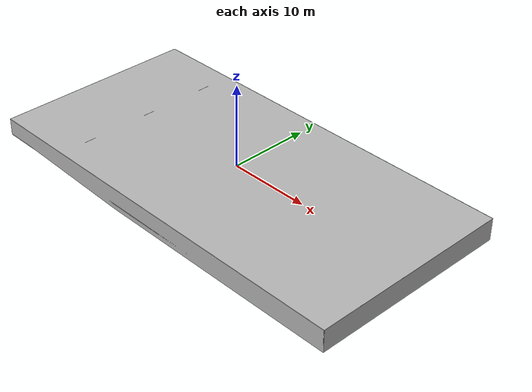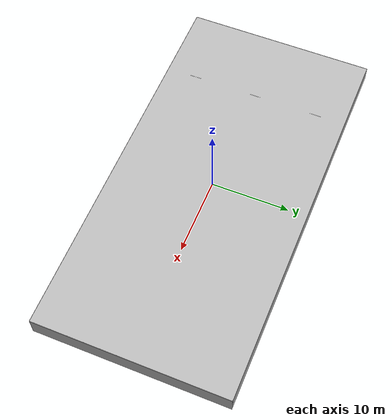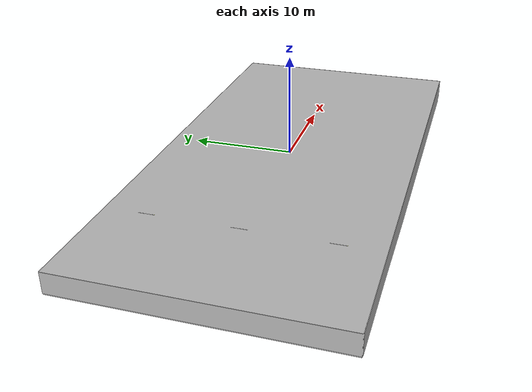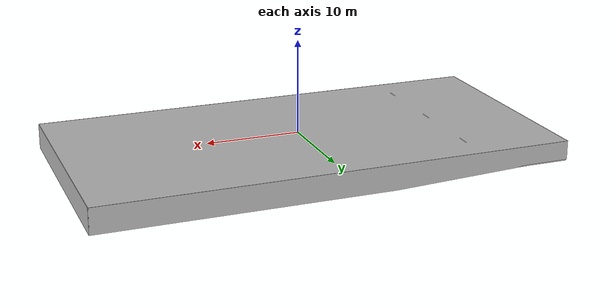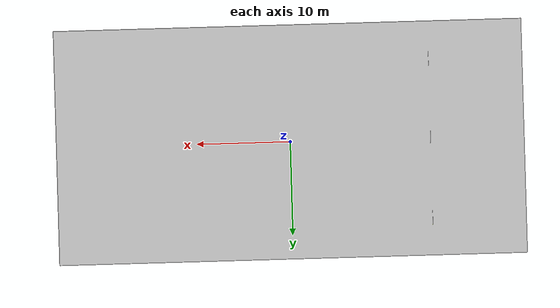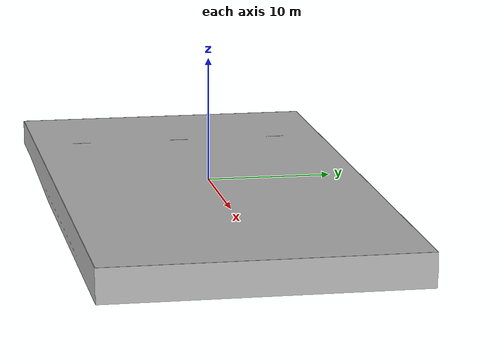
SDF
<sdf version="1.11">
 <world name="sauvc">
  <scene>
   <ambient>0.01 0.01 0.01 1.0</ambient>
   <sky><clouds><speed>12</speed></clouds></sky>
   <shadows>1</shadows>
  </scene>
  <physics name="default_physics" default="true" type="ode">
   <max_step_size>0.002</max_step_size>
   <real_time_factor>1</real_time_factor>
   <real_time_update_rate>0</real_time_update_rate>
   <ode><solver><type>quick</type><iters>50</iters><sor>0.5</sor></solver></ode>
  </physics>
  <plugin filename="gz-sim-physics-system" name="gz::sim::systems::Physics"/>
  <plugin filename="gz-sim-user-commands-system" name="gz::sim::systems::UserCommands"/>
  <plugin filename="gz-sim-sensors-system" name="gz::sim::systems::Sensors">
   <render_engine>ogre2</render_engine>
   <disable_on_drained_battery>true</disable_on_drained_battery>
  </plugin>
  <plugin filename="gz-sim-imu-system" name="gz::sim::systems::Imu"/>
  <plugin filename="gz-sim-magnetometer-system" name="gz::sim::systems::Magnetometer"/>
  <plugin filename="gz-sim-forcetorque-system" name="gz::sim::systems::ForceTorque"/>
  <plugin filename="gz-sim-particle-emitter-system" name="gz::sim::systems::ParticleEmitter"/>
  <plugin filename="gz-sim-scene-broadcaster-system" name="gz::sim::systems::SceneBroadcaster"/>
  <plugin filename="gz-sim-contact-system" name="gz::sim::systems::Contact"/>
  <plugin filename="gz-sim-navsat-system" name="gz::sim::systems::NavSat"/>
  <scene><grid>false</grid><ambient>1.0 1.0 1.0</ambient><background>0.8 0.8 0.8</background></scene>
  <spherical_coordinates>
   <surface_model>EARTH_WGS84</surface_model>
   <world_frame_orientation>ENU</world_frame_orientation>
   <latitude_deg>1.309562</latitude_deg>
   <longitude_deg>103.7745783</longitude_deg>
   <elevation>0.0</elevation>
   <heading_deg>0.0</heading_deg>
  </spherical_coordinates>
  <light type="directional" name="sun">
   <cast_shadows>false</cast_shadows>
   <pose>0 0 10 0 0 0</pose>
   <diffuse>0.2 0.2 0.8 1</diffuse>
   <specular>0 0 0.3 1</specular>
   <attenuation>
    <range>1000</range>
    <constant>0.9</constant>
    <linear>0.01</linear>
    <quadratic>0.001</quadratic>
   </attenuation>
   <direction>-0.5 0.1 -0.9</direction>
  </light>
  <include><uri>model://sp_swimming_pool</uri></include>
  <include><uri>model://sauvc_orange_flare</uri><pose>6 -4 -2 0 0 0</pose></include>
  <include><uri>model://sauvc_gate</uri><pose>6 -.6 -2 0 0 1.2</pose></include>
  <include><name>yellow_flare</name><uri>model://sauvc_yellow_flare</uri><pose>12 6 -2 0 0 0</pose></include>
  <include><name>blue_flare</name><uri>model://sauvc_blue_flare</uri><pose>12 4.5 -2 0 0 0</pose></include>
  <include><name>red_flare</name><uri>model://sauvc_red_flare</uri><pose>12 2.5 -2 0 0 0</pose></include>
  <include>
   <name>yellow_flare_ball</name>
   <uri>model://dropper_marker</uri>
   <pose>12 6 -1.15 0 0 0</pose>
  </include>
  <include>
   <name>blue_flare_ball</name>
   <uri>model://dropper_marker</uri>
   <pose>12 4.5 -1.15 0 0 0</pose>
  </include>
  <include><name>red_flare_ball</name><uri>model://dropper_marker</uri><pose>12 2.5 -1.15 0 0 0</pose></include>
  <include>
   <name>qualification_gate_1</name>
   <uri>model://sauvc_qualification_gate</uri>
   <pose>-15 8.5 0 0 0 0</pose>
  </include>
  <include>
   <name>qualification_gate_2</name>
   <uri>model://sauvc_qualification_gate</uri>
   <pose>-15 0 0 0 0 0</pose>
  </include>
  <include>
   <name>qualification_gate_3</name>
   <uri>model://sauvc_qualification_gate</uri>
   <pose>-15 -8.5 0 0 0 0</pose>
  </include>
  <include><name>surface</name><uri>model://pool_waves</uri></include>
  <plugin filename="gz-sim-buoyancy-system" name="gz::sim::systems::Buoyancy">
   <graded_buoyancy>
    <default_density>1000</default_density>
    <density_change><above_depth>0</above_depth><density>1</density></density_change>
    <enable>auv4::buoyancy_link</enable>
   </graded_buoyancy>
  </plugin>
  <plugin filename="gz-sim-dvl-system" name="gz::sim::systems::DopplerVelocityLogSystem"/>
  <plugin filename="dave_ros_gz_plugins/libDVLBridge.so" name="dave_ros_gz_plugins::DVLBridge"/>
 </world>
</sdf>

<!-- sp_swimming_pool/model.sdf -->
<sdf version="1.11">
  <model name="sp_swimming_pool">
    <static>true</static>
    <link name="link">

      <visual name="pool">
        <pose>0 0 0 0 0 0</pose>
        <geometry>
          <mesh>
            <!-- The URI should refer to the 3D mesh. The "model:"
                URI scheme indicates that the we are referencing a Gazebo
                model. -->
            <uri>model://sp_swimming_pool/meshes/sppool.dae</uri>
          </mesh>
        </geometry>
      </visual>

      <collision name="pool_collision">
        <pose>0 0 0 0 0 0</pose>
        <geometry>
          <mesh>
            <uri>model://sp_swimming_pool/meshes/sppool.stl</uri>
          </mesh>
        </geometry>
      </collision>
      <collision name="pool_base">
        <pose>0 0 -2.05 0 0 0</pose>
        <geometry>
          <box>
            <size>50 25 0.1</size>
          </box>
        </geometry>
      </collision>
    </link>
  </model>
</sdf>

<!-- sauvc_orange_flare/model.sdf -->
<sdf version="1.11">
  <model name="sauvc_orange_flare">
    <static>false</static>
    <link name="link">
      <collision name="orange_flare_collision">
        <pose>0 0 0 0 0 0</pose>
        <geometry>
          <mesh>
            <scale>1 1 1</scale>
            <uri>model://sauvc_orange_flare/orange_flare.dae</uri>
          </mesh>
        </geometry>
      </collision>

      <visual name="orange_flare">
        <cast_shadows>false</cast_shadows>
        <pose>0 0 0 0 0 0</pose>
        <geometry>
          <mesh>
            <scale>1 1 1</scale>
            <uri>model://sauvc_orange_flare/orange_flare.dae</uri>
          </mesh>
        </geometry>
      </visual>
    </link>
  </model>
</sdf>

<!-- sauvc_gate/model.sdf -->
<sdf version="1.11">
  <model name="sauvc_gate">
    <link name="link">
    <static>true</static>
    <collision name="gate_collision">
      <pose>0 0 0 0 0 0</pose>
      <geometry>
        <mesh>
          <scale>1 1 1</scale>
          <uri>model://sauvc_gate/gate.dae</uri>
        </mesh>
      </geometry>
    </collision>

    <visual name="gate">
      <cast_shadows>false</cast_shadows>
      <pose>0 0 0 0 0 0</pose>
      <geometry>
        <mesh>
          <scale>1 1 1</scale>
          <uri>model://sauvc_gate/gate.dae</uri>
        </mesh>
      </geometry>
    </visual>
    </link>
  </model>
</sdf>

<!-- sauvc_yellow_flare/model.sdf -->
<sdf version="1.11">
  <model name="sauvc_yellow_flare">
    <static>false</static>
    <link name="link">
      <collision name="yellow_flare_collision">
        <pose>0 0 0 0 0 0</pose>
        <geometry>
          <mesh>
            <scale>1 1 1</scale>
            <uri>model://sauvc_yellow_flare/yellow_flare.dae</uri>
          </mesh>
        </geometry>
      </collision>
      <collision name="flare">
        <pose>0 0 0.4 0 0 0</pose>
        <geometry>
          <cylinder>
            <radius>0.02</radius>
            <length>0.8</length>
          </cylinder>
        </geometry>
      </collision>
      <visual name="yellow_flare">
        <cast_shadows>false</cast_shadows>
        <pose>0 0 0 0 0 0</pose>
        <geometry>
          <mesh>
            <scale>1 1 1</scale>
            <uri>model://sauvc_yellow_flare/yellow_flare.dae</uri>
          </mesh>
        </geometry>
      </visual>
    </link>
  </model>
</sdf>

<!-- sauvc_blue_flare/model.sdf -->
<sdf version="1.11">
  <model name="sauvc_blue_flare">
    <static>false</static>
    <link name="link">
      <collision name="blue_flare_collision">
        <pose>0 0 0 0 0 0</pose>
        <geometry>
          <mesh>
            <scale>1 1 1</scale>
            <uri>model://sauvc_blue_flare/blue_flare.dae</uri>
          </mesh>
        </geometry>
      </collision>
      <collision name="flare">
        <pose>0 0 0.4 0 0 0</pose>
        <geometry>
          <cylinder>
            <radius>0.02</radius>
            <length>0.8</length>
          </cylinder>
        </geometry>
      </collision>
      <visual name="blue_flare">
        <cast_shadows>false</cast_shadows>
        <pose>0 0 0 0 0 0</pose>
        <geometry>
          <mesh>
            <scale>1 1 1</scale>
            <uri>model://sauvc_blue_flare/blue_flare.dae</uri>
          </mesh>
        </geometry>
      </visual>
    </link>
  </model>
</sdf>

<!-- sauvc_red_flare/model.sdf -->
<sdf version="1.11">
  <model name="sauvc_red_flare">
    <static>false</static>
    <link name="link">
      <collision name="red_flare_collision">
        <pose>0 0 0 0 0 0</pose>
        <geometry>
          <mesh>
            <scale>1 1 1</scale>
            <uri>model://sauvc_red_flare/red_flare.dae</uri>
          </mesh>
        </geometry>
      </collision>
      <collision name="flare">
        <pose>0 0 0.4 0 0 0</pose>
        <geometry>
          <cylinder>
            <radius>0.02</radius>
            <length>0.8</length>
          </cylinder>
        </geometry>
      </collision>

      <visual name="red_flare">
        <cast_shadows>false</cast_shadows>
        <pose>0 0 0 0 0 0</pose>
        <geometry>
          <mesh>
            <scale>1 1 1</scale>
            <uri>model://sauvc_red_flare/red_flare.dae</uri>
          </mesh>
        </geometry>
      </visual>
    </link>
  </model>
</sdf>

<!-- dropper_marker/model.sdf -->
<sdf version="1.11">    <model name="dropper_marker">
        <static>false</static>
        <link name="link">
            <inertial>
                <mass>0.5</mass>
                <inertia>
                    <ixx>0.0002</ixx><ixy>0</ixy><ixz>0</ixz>
                    <iyy>0.0002</iyy><iyz>0</iyz>
                    <izz>0.0001</izz>
                </inertia>
            </inertial>
            <visual name="dropper_marker_visual">
                <geometry>
                    <mesh>
                        <uri>model://dropper_marker/mesh/dropper_marker.dae</uri>
                    </mesh>
                </geometry>
                <material>
                    <ambient>1 0 0 1</ambient>
                    <diffuse>1 0 0 1</diffuse>
                    <specular>0.1 0.1 0.1 1</specular>
                </material>
            </visual>
            <collision name="dropper_marker_collision">
                <geometry>
                    <cylinder>
                        <radius>0.02</radius>
                        <length>0.05</length>
                    </cylinder>
                </geometry>
            </collision>
        </link>
    </model>
</sdf>

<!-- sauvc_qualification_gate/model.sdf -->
<sdf version="1.11">
  <model name="sauvc_qualification_gate">
    <static>true</static>
    <link name="link">
      <collision name="qualification_gate_collision">
        <pose>0 0 0 0 0 0</pose>
        <geometry>
          <mesh>
            <scale>1 1 1</scale>
            <uri>model://sauvc_qualification_gate/qualification_gate.dae</uri>
          </mesh>
        </geometry>
      </collision>

      <visual name="qualification_gate">
        <cast_shadows>false</cast_shadows>
        <pose>0 0 0 0 0 0</pose>
        <geometry>
          <mesh>
            <scale>1 1 1</scale>
            <uri>model://sauvc_qualification_gate/qualification_gate.dae</uri>
          </mesh>
        </geometry>
      </visual>
    </link>
  </model>
</sdf>

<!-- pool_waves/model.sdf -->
<sdf version="1.6">
    <model name="pool_waves">
        <static>true</static>
        <link name="link">
            <visual name="visual">
                <geometry>
                    <mesh>
                        <uri>meshes/mesh1.dae</uri>
                    </mesh>
                </geometry>
                <plugin filename="gz-sim-shader-param-system" name="gz::sim::systems::ShaderParam">
                    <shader language="glsl">
                        <vertex>materials/programs/GerstnerWaves_vs_330.glsl</vertex>
                        <fragment>materials/programs/GerstnerWaves_fs_330.glsl</fragment>
                    </shader>
                    <shader language="metal">
                        <vertex>materials/programs/GerstnerWaves_vs.metal</vertex>
                        <fragment>materials/programs/GerstnerWaves_fs.metal</fragment>
                    </shader>
                    <param>
                        <shader>vertex</shader>
                        <name>Nwaves</name>
                        <type>int</type>
                        <value>3</value>
                    </param>
                    <param>
                        <shader>vertex</shader>
                        <name>rescale</name>
                        <type>float</type>
                        <value>0.5</value>
                    </param>
                    <param>
                        <shader>vertex</shader>
                        <name>bumpScale</name>
                        <type>float_array</type>
                        <value>25 25</value>
                    </param>
                    <param>
                        <shader>vertex</shader>
                        <name>bumpSpeed</name>
                        <type>float_array</type>
                        <value>0.01 0.01</value>
                    </param>
                    <param>
                        <shader>vertex</shader>
                        <name>amplitude</name>
                        <type>float_array</type>
                        <value>0.1 0.05 0.02</value>
                    </param>

                    <param>
                        <shader>vertex</shader>
                        <name>wavenumber</name>
                        <type>float_array</type>
                        <value>0.028 0.0896 0.0504</value>
                    </param>
                    <param>
                        <shader>vertex</shader>
                        <name>omega</name>
                        <type>float_array</type>
                        <value>0.5 1.7 1.0</value>
                    </param>
                    <param>
                        <shader>vertex</shader>
                        <name>dir0</name>
                        <type>float_array</type>
                        <value>-1.0 0.0</value>
                    </param>
                    <param>
                        <shader>vertex</shader>
                        <name>dir1</name>
                        <type>float_array</type>
                        <value>-0.7 0.7</value>
                    </param>
                    <param>
                        <shader>vertex</shader>
                        <name>dir2</name>
                        <type>float_array</type>
                        <value>0.7 0.7</value>
                    </param>
                    <param>
                        <shader>vertex</shader>
                        <name>steepness</name>
                        <type>float_array</type>
                        <value>1.0 1.5 0.8</value>
                    </param>
                    <param>
                        <shader>vertex</shader>
                        <name>tau</name>
                        <type>float</type>
                        <value>2.0</value>
                    </param>
                    <param>
                        <shader>vertex</shader>
                        <name>camera_position_object_space</name>
                    </param>
                    <param>
                        <shader>vertex</shader>
                        <name>worldviewproj_matrix</name>
                    </param>
                    <param>
                        <shader>vertex</shader>
                        <name>t</name>
                        <value>TIME</value>
                    </param>
                    <param>
                        <shader>fragment</shader>
                        <name>hdrMultiplier</name>
                        <type>float</type>
                        <value>0.4</value>
                    </param>
                    <param>
                        <shader>fragment</shader>
                        <name>fresnelPower</name>
                        <type>float</type>
                        <value>5.0</value>
                    </param>
                    <param>
                        <shader>fragment</shader>
                        <name>shallowColor</name>
                        <type>float_array</type>
                        <value>0.0 0.1 0.3 1.0</value>
                    </param>
                    <param>
                        <shader>fragment</shader>
                        <name>deepColor</name>
                        <type>float_array</type>
                        <value>0.0 0.05 0.02 1.0</value>
                    </param>
                    <param>
                        <shader>fragment</shader>
                        <name>cubeMap</name>
                        <type>texture_cube</type>
                        <value>materials/textures/skybox_lowres.dds</value>
                        <!-- arg: texture coord set index -->
                        <arg>1</arg>
                    </param>
                    <param>
                        <shader>fragment</shader>
                        <name>bumpMap</name>
                        <type>texture</type>
                        <value>materials/textures/wave_normals.dds</value>
                    </param>
                </plugin>
            </visual>
        </link>
    </model>
</sdf>
